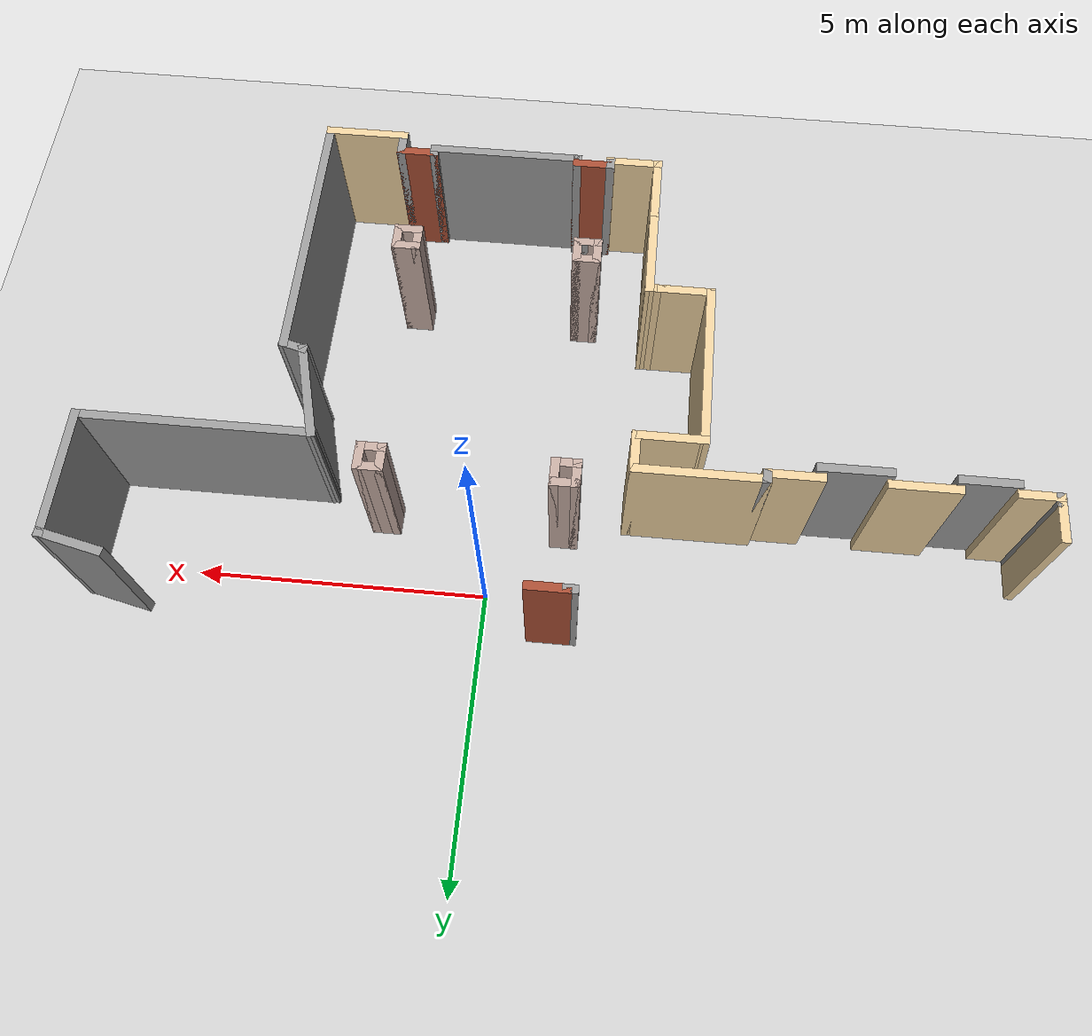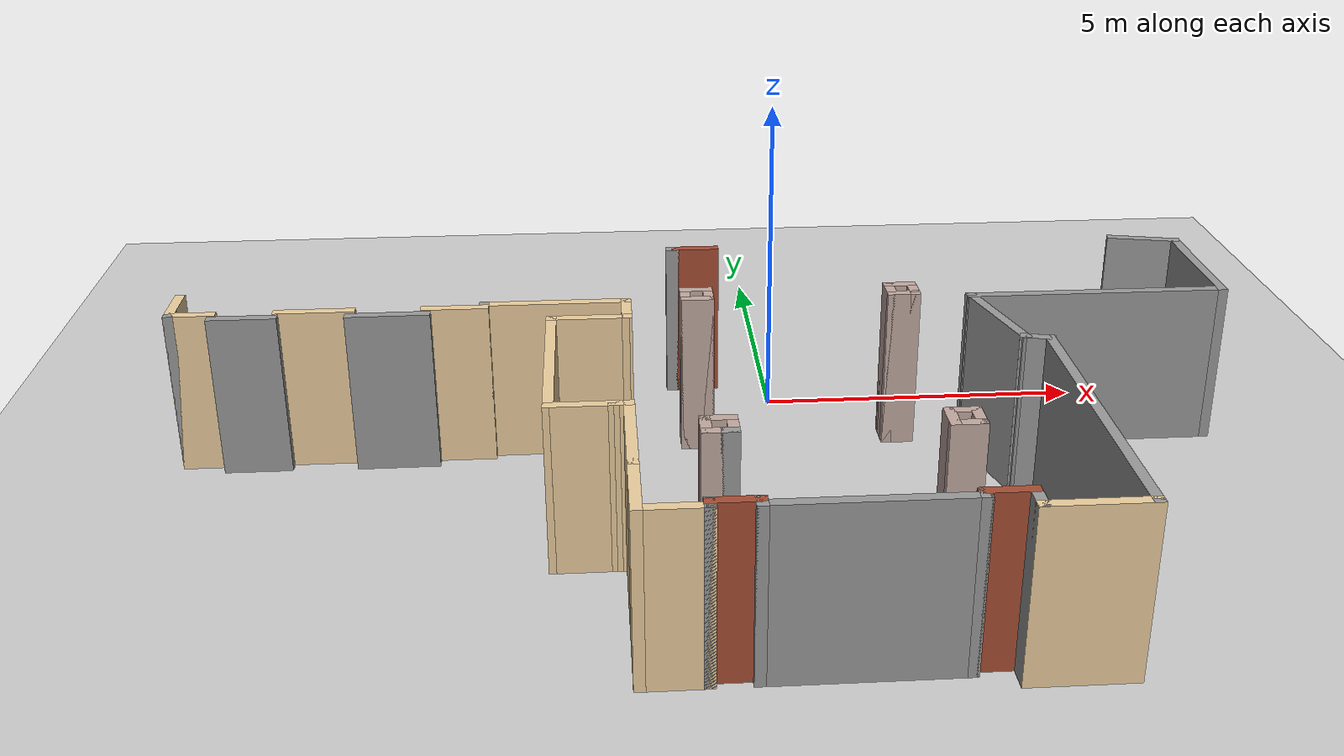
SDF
<sdf version="1.6">
 <world name="default">
  <model name="ground_plane">
   <static>1</static>
   <link name="link">
    <collision name="collision">
     <geometry><plane><normal>0 0 1</normal><size>100 100</size></plane></geometry>
     <surface>
      <contact><collide_bitmask>65535</collide_bitmask></contact>
      <friction><ode><mu>100</mu><mu2>50</mu2></ode></friction>
     </surface>
    </collision>
    <visual name="visual">
     <cast_shadows>0</cast_shadows>
     <geometry><plane><normal>0 0 1</normal><size>100 100</size></plane></geometry>
     <material>
      <script><uri>file://media/materials/scripts/gazebo.material</uri><name>Gazebo/Grey</name></script>
     </material>
    </visual>
   </link>
  </model>
  <model name="NSH_Hallway">
   <pose>-1.11426 2.16116 0 0 -0 0</pose>
   <link name="Wall_105">
    <collision name="Wall_105_Collision">
     <geometry><box><size>0.75 0.15 2.5</size></box></geometry>
     <pose>0 0 1.25 0 -0 0</pose>
    </collision>
    <visual name="Wall_105_Visual">
     <pose>0 0 1.25 0 -0 0</pose>
     <geometry><box><size>0.75 0.15 2.5</size></box></geometry>
     <material>
      <script><uri>file://media/materials/scripts/gazebo.material</uri><name>Gazebo/Grey</name></script>
      <ambient>0.921569 0.807843 0.615686 1</ambient>
     </material>
     <meta><layer>0</layer></meta>
    </visual>
    <pose>-7.88142 -3.32378 0 0 -0 -1.5708</pose>
   </link>
   <link name="Wall_106">
    <collision name="Wall_106_Collision">
     <geometry><box><size>0.25 0.15 2.5</size></box></geometry>
     <pose>0 0 1.25 0 -0 0</pose>
    </collision>
    <visual name="Wall_106_Visual">
     <pose>0 0 1.25 0 -0 0</pose>
     <geometry><box><size>0.25 0.15 2.5</size></box></geometry>
     <material>
      <script><uri>file://media/materials/scripts/gazebo.material</uri><name>Gazebo/Grey</name></script>
      <ambient>1 1 1 1</ambient>
     </material>
     <meta><layer>0</layer></meta>
    </visual>
    <pose>-7.88142 -3.67378 0 0 -0 -1.5708</pose>
   </link>
   <link name="Wall_107">
    <collision name="Wall_107_Collision">
     <geometry><box><size>0.75 0.15 2.5</size></box></geometry>
     <pose>0 0 1.25 0 -0 0</pose>
    </collision>
    <visual name="Wall_107_Visual">
     <pose>0 0 1.25 0 -0 0</pose>
     <geometry><box><size>0.75 0.15 2.5</size></box></geometry>
     <material>
      <script><uri>file://media/materials/scripts/gazebo.material</uri><name>Gazebo/Grey</name></script>
      <ambient>0.921569 0.807843 0.615686 1</ambient>
     </material>
     <meta><layer>0</layer></meta>
    </visual>
    <pose>-7.58142 -3.72378 0 0 -0 0</pose>
   </link>
   <link name="Wall_109">
    <collision name="Wall_109_Collision">
     <geometry><box><size>1.19955 0.15 2.5</size></box></geometry>
     <pose>0 0 1.25 0 -0 0</pose>
    </collision>
    <visual name="Wall_109_Visual">
     <pose>0 0 1.25 0 -0 0</pose>
     <geometry><box><size>1.19955 0.15 2.5</size></box></geometry>
     <material>
      <script><uri>file://media/materials/scripts/gazebo.material</uri><name>Gazebo/Grey</name></script>
      <ambient>0.921569 0.807843 0.615686 1</ambient>
     </material>
     <meta><layer>0</layer></meta>
    </visual>
    <pose>-5.78849 -3.71137 0 0 -0 0</pose>
   </link>
   <link name="Wall_172">
    <collision name="Wall_172_Collision">
     <geometry><box><size>1.25 0.15 2.5</size></box></geometry>
     <pose>0 0 1.25 0 -0 0</pose>
    </collision>
    <visual name="Wall_172_Visual">
     <pose>0 0 1.25 0 -0 0</pose>
     <geometry><box><size>1.25 0.15 2.5</size></box></geometry>
     <material>
      <script><uri>file://media/materials/scripts/gazebo.material</uri><name>Gazebo/Grey</name></script>
      <ambient>0.921569 0.807843 0.615686 1</ambient>
     </material>
     <meta><layer>0</layer></meta>
    </visual>
    <pose>-1.76247 -4.22776 0 0 -0 3.14144</pose>
   </link>
   <link name="Wall_173">
    <collision name="Wall_173_Collision">
     <geometry><box><size>3 0.15 2.5</size></box></geometry>
     <pose>0 0 1.25 0 -0 0</pose>
    </collision>
    <visual name="Wall_173_Visual">
     <pose>0 0 1.25 0 -0 0</pose>
     <geometry><box><size>3 0.15 2.5</size></box></geometry>
     <material>
      <script><uri>file://media/materials/scripts/gazebo.material</uri><name>Gazebo/Grey</name></script>
      <ambient>0.921569 0.807843 0.615686 1</ambient>
     </material>
     <meta><layer>0</layer></meta>
    </visual>
    <pose>-2.3125 -5.65268 0 0 -0 -1.5708</pose>
   </link>
   <link name="Wall_174">
    <collision name="Wall_174_Collision">
     <geometry><box><size>1 0.15 2.5</size></box></geometry>
     <pose>0 0 1.25 0 -0 0</pose>
    </collision>
    <visual name="Wall_174_Visual">
     <pose>0 0 1.25 0 -0 0</pose>
     <geometry><box><size>1 0.15 2.5</size></box></geometry>
     <material>
      <script><uri>file://media/materials/scripts/gazebo.material</uri><name>Gazebo/Grey</name></script>
      <ambient>0.921569 0.807843 0.615686 1</ambient>
     </material>
     <meta><layer>0</layer></meta>
    </visual>
    <pose>-1.88747 -7.07776 0 0 -0 -0.000198</pose>
   </link>
   <link name="Wall_175">
    <collision name="Wall_175_Collision">
     <geometry><box><size>0.349388 0.15 2.5</size></box></geometry>
     <pose>0 0 1.25 0 -0 0</pose>
    </collision>
    <visual name="Wall_175_Visual">
     <pose>0 0 1.25 0 -0 0</pose>
     <geometry><box><size>0.349388 0.15 2.5</size></box></geometry>
     <material>
      <script><uri>file://media/materials/scripts/gazebo.material</uri><name>Gazebo/Grey</name></script>
      <ambient>0.921569 0.807843 0.615686 1</ambient>
     </material>
     <meta><layer>0</layer></meta>
    </visual>
    <pose>-1.36276 -7.07686 0 0 -0 0.009857</pose>
   </link>
   <link name="Wall_176">
    <collision name="Wall_176_Collision">
     <geometry><box><size>1.75 0.15 2.5</size></box></geometry>
     <pose>0 0 1.25 0 -0 0</pose>
    </collision>
    <visual name="Wall_176_Visual">
     <pose>0 0 1.25 0 -0 0</pose>
     <geometry><box><size>1.75 0.15 2.5</size></box></geometry>
     <material>
      <script><uri>file://media/materials/scripts/gazebo.material</uri><name>Gazebo/Grey</name></script>
      <ambient>0.921569 0.807843 0.615686 1</ambient>
     </material>
     <meta><layer>0</layer></meta>
    </visual>
    <pose>-1.26307 -7.87588 0 0 -0 -1.5708</pose>
   </link>
   <link name="Wall_179">
    <collision name="Wall_179_Collision">
     <geometry><box><size>0.5 0.15 2.5</size></box></geometry>
     <pose>0 0 1.25 0 -0 0</pose>
    </collision>
    <visual name="Wall_179_Visual">
     <pose>0 0 1.25 0 -0 0</pose>
     <geometry><box><size>0.5 0.15 2.5</size></box></geometry>
     <material>
      <script><uri>file://media/materials/scripts/gazebo.material</uri><name>Gazebo/Grey</name></script>
      <ambient>0.760784 0.662745 0.627451 1</ambient>
     </material>
     <meta><layer>0</layer></meta>
    </visual>
    <pose>-0.146646 -7.58829 0 0 -0 0</pose>
   </link>
   <link name="Wall_180">
    <collision name="Wall_180_Collision">
     <geometry><box><size>0.5 0.15 2.5</size></box></geometry>
     <pose>0 0 1.25 0 -0 0</pose>
    </collision>
    <visual name="Wall_180_Visual">
     <pose>0 0 1.25 0 -0 0</pose>
     <geometry><box><size>0.5 0.15 2.5</size></box></geometry>
     <material>
      <script><uri>file://media/materials/scripts/gazebo.material</uri><name>Gazebo/Grey</name></script>
      <ambient>0.760784 0.662745 0.627451 1</ambient>
     </material>
     <meta><layer>0</layer></meta>
    </visual>
    <pose>0.028354 -7.76329 0 0 -0 -1.5708</pose>
   </link>
   <link name="Wall_181">
    <collision name="Wall_181_Collision">
     <geometry><box><size>0.25 0.15 2.5</size></box></geometry>
     <pose>0 0 1.25 0 -0 0</pose>
    </collision>
    <visual name="Wall_181_Visual">
     <pose>0 0 1.25 0 -0 0</pose>
     <geometry><box><size>0.25 0.15 2.5</size></box></geometry>
     <material>
      <script><uri>file://media/materials/scripts/gazebo.material</uri><name>Gazebo/Grey</name></script>
      <ambient>1 1 1 1</ambient>
     </material>
     <meta><layer>0</layer></meta>
    </visual>
    <pose>-0.021646 -7.9383 0 0 -0 3.14159</pose>
   </link>
   <link name="Wall_183">
    <collision name="Wall_183_Collision">
     <geometry><box><size>0.5 0.15 2.5</size></box></geometry>
     <pose>0 0 1.25 0 -0 0</pose>
    </collision>
    <visual name="Wall_183_Visual">
     <pose>0 0 1.25 0 -0 0</pose>
     <geometry><box><size>0.5 0.15 2.5</size></box></geometry>
     <material>
      <script><uri>file://media/materials/scripts/gazebo.material</uri><name>Gazebo/Grey</name></script>
      <ambient>0.760784 0.662745 0.627451 1</ambient>
     </material>
     <meta><layer>0</layer></meta>
    </visual>
    <pose>-0.321646 -7.76329 0 0 -0 -1.5708</pose>
   </link>
   <link name="Wall_184">
    <collision name="Wall_184_Collision">
     <geometry><box><size>0.5 0.15 2.5</size></box></geometry>
     <pose>0 0 1.25 0 -0 0</pose>
    </collision>
    <visual name="Wall_184_Visual">
     <pose>0 0 1.25 0 -0 0</pose>
     <geometry><box><size>0.5 0.15 2.5</size></box></geometry>
     <material>
      <script><uri>file://media/materials/scripts/gazebo.material</uri><name>Gazebo/Grey</name></script>
      <ambient>0.760784 0.662745 0.627451 1</ambient>
     </material>
     <meta><layer>0</layer></meta>
    </visual>
    <pose>-0.146646 -7.9383 0 0 -0 0</pose>
   </link>
   <link name="Wall_186">
    <collision name="Wall_186_Collision">
     <geometry><box><size>0.5 0.15 2.5</size></box></geometry>
     <pose>0 0 1.25 0 -0 0</pose>
    </collision>
    <visual name="Wall_186_Visual">
     <pose>0 0 1.25 0 -0 0</pose>
     <geometry><box><size>0.5 0.15 2.5</size></box></geometry>
     <material>
      <script><uri>file://media/materials/scripts/gazebo.material</uri><name>Gazebo/Grey</name></script>
      <ambient>0.760784 0.662745 0.627451 1</ambient>
     </material>
     <meta><layer>0</layer></meta>
    </visual>
    <pose>2.99841 -7.58829 0 0 -0 0</pose>
   </link>
   <link name="Wall_187">
    <collision name="Wall_187_Collision">
     <geometry><box><size>0.5 0.15 2.5</size></box></geometry>
     <pose>0 0 1.25 0 -0 0</pose>
    </collision>
    <visual name="Wall_187_Visual">
     <pose>0 0 1.25 0 -0 0</pose>
     <geometry><box><size>0.5 0.15 2.5</size></box></geometry>
     <material>
      <script><uri>file://media/materials/scripts/gazebo.material</uri><name>Gazebo/Grey</name></script>
      <ambient>0.760784 0.662745 0.627451 1</ambient>
     </material>
     <meta><layer>0</layer></meta>
    </visual>
    <pose>3.17341 -7.76329 0 0 -0 -1.5708</pose>
   </link>
   <link name="Wall_188">
    <collision name="Wall_188_Collision">
     <geometry><box><size>0.5 0.15 2.5</size></box></geometry>
     <pose>0 0 1.25 0 -0 0</pose>
    </collision>
    <visual name="Wall_188_Visual">
     <pose>0 0 1.25 0 -0 0</pose>
     <geometry><box><size>0.5 0.15 2.5</size></box></geometry>
     <material>
      <script><uri>file://media/materials/scripts/gazebo.material</uri><name>Gazebo/Grey</name></script>
      <ambient>0.760784 0.662745 0.627451 1</ambient>
     </material>
     <meta><layer>0</layer></meta>
    </visual>
    <pose>2.99841 -7.9383 0 0 -0 3.14159</pose>
   </link>
   <link name="Wall_189">
    <collision name="Wall_189_Collision">
     <geometry><box><size>0.5 0.15 2.5</size></box></geometry>
     <pose>0 0 1.25 0 -0 0</pose>
    </collision>
    <visual name="Wall_189_Visual">
     <pose>0 0 1.25 0 -0 0</pose>
     <geometry><box><size>0.5 0.15 2.5</size></box></geometry>
     <material>
      <script><uri>file://media/materials/scripts/gazebo.material</uri><name>Gazebo/Grey</name></script>
      <ambient>0.760784 0.662745 0.627451 1</ambient>
     </material>
     <meta><layer>0</layer></meta>
    </visual>
    <pose>2.82341 -7.76329 0 0 -0 1.5708</pose>
   </link>
   <link name="Wall_191">
    <collision name="Wall_191_Collision">
     <geometry><box><size>1.25 0.15 2.5</size></box></geometry>
     <pose>0 0 1.25 0 -0 0</pose>
    </collision>
    <visual name="Wall_191_Visual">
     <pose>0 0 1.25 0 -0 0</pose>
     <geometry><box><size>1.25 0.15 2.5</size></box></geometry>
     <material>
      <script><uri>file://media/materials/scripts/gazebo.material</uri><name>Gazebo/Grey</name></script>
      <ambient>0.921569 0.807843 0.615686 1</ambient>
     </material>
     <meta><layer>0</layer></meta>
    </visual>
    <pose>-1.26307 -9.22588 0 0 -0 -1.5708</pose>
   </link>
   <link name="Wall_192">
    <collision name="Wall_192_Collision">
     <geometry><box><size>1 0.15 2.5</size></box></geometry>
     <pose>0 0 1.25 0 -0 0</pose>
    </collision>
    <visual name="Wall_192_Visual">
     <pose>0 0 1.25 0 -0 0</pose>
     <geometry><box><size>1 0.15 2.5</size></box></geometry>
     <material>
      <script><uri>file://media/materials/scripts/gazebo.material</uri><name>Gazebo/Grey</name></script>
      <ambient>0.921569 0.807843 0.615686 1</ambient>
     </material>
     <meta><layer>0</layer></meta>
    </visual>
    <pose>-0.838069 -9.77588 0 0 -0 0</pose>
   </link>
   <link name="Wall_193">
    <collision name="Wall_193_Collision">
     <geometry><box><size>0.15 0.15 2.5</size></box></geometry>
     <pose>0 0 1.25 0 -0 0</pose>
    </collision>
    <visual name="Wall_193_Visual">
     <pose>0 0 1.25 0 -0 0</pose>
     <geometry><box><size>0.15 0.15 2.5</size></box></geometry>
     <material>
      <script><uri>file://media/materials/scripts/gazebo.material</uri><name>Gazebo/Grey</name></script>
      <ambient>1 1 1 1</ambient>
     </material>
     <meta><layer>0</layer></meta>
    </visual>
    <pose>-0.413069 -9.77588 0 0 -0 0</pose>
   </link>
   <link name="Wall_194">
    <collision name="Wall_194_Collision">
     <geometry><box><size>0.25 0.15 2.5</size></box></geometry>
     <pose>0 0 1.25 0 -0 0</pose>
    </collision>
    <visual name="Wall_194_Visual">
     <pose>0 0 1.25 0 -0 0</pose>
     <geometry><box><size>0.25 0.15 2.5</size></box></geometry>
     <material>
      <script><uri>file://media/materials/scripts/gazebo.material</uri><name>Gazebo/Grey</name></script>
      <ambient>1 1 1 1</ambient>
     </material>
     <meta><layer>0</layer></meta>
    </visual>
    <pose>-0.413069 -9.72588 0 0 -0 1.5708</pose>
   </link>
   <link name="Wall_195">
    <collision name="Wall_195_Collision">
     <geometry><box><size>0.75 0.15 2.5</size></box></geometry>
     <pose>0 0 1.25 0 -0 0</pose>
    </collision>
    <visual name="Wall_195_Visual">
     <pose>0 0 1.25 0 -0 0</pose>
     <geometry><box><size>0.75 0.15 2.5</size></box></geometry>
     <material>
      <script><uri>file://media/materials/scripts/gazebo.material</uri><name>Gazebo/Bricks</name></script>
      <ambient>1 1 1 1</ambient>
     </material>
     <meta><layer>0</layer></meta>
    </visual>
    <pose>-0.113069 -9.67588 0 0 -0 0</pose>
   </link>
   <link name="Wall_196">
    <collision name="Wall_196_Collision">
     <geometry><box><size>0.25 0.15 2.5</size></box></geometry>
     <pose>0 0 1.25 0 -0 0</pose>
    </collision>
    <visual name="Wall_196_Visual">
     <pose>0 0 1.25 0 -0 0</pose>
     <geometry><box><size>0.25 0.15 2.5</size></box></geometry>
     <material>
      <script><uri>file://media/materials/scripts/gazebo.material</uri><name>Gazebo/Grey</name></script>
      <ambient>1 1 1 1</ambient>
     </material>
     <meta><layer>0</layer></meta>
    </visual>
    <pose>0.186931 -9.72588 0 0 -0 -1.5708</pose>
   </link>
   <link name="Wall_197">
    <collision name="Wall_197_Collision">
     <geometry><box><size>2.75 0.15 2.5</size></box></geometry>
     <pose>0 0 1.25 0 -0 0</pose>
    </collision>
    <visual name="Wall_197_Visual">
     <pose>0 0 1.25 0 -0 0</pose>
     <geometry><box><size>2.75 0.15 2.5</size></box></geometry>
     <material>
      <script><uri>file://media/materials/scripts/gazebo.material</uri><name>Gazebo/Grey</name></script>
      <ambient>0.333333 0.341176 0.32549 1</ambient>
     </material>
     <meta><layer>0</layer></meta>
    </visual>
    <pose>1.48693 -9.77588 0 0 -0 0</pose>
   </link>
   <link name="Wall_198">
    <collision name="Wall_198_Collision">
     <geometry><box><size>0.25 0.15 2.5</size></box></geometry>
     <pose>0 0 1.25 0 -0 0</pose>
    </collision>
    <visual name="Wall_198_Visual">
     <pose>0 0 1.25 0 -0 0</pose>
     <geometry><box><size>0.25 0.15 2.5</size></box></geometry>
     <material>
      <script><uri>file://media/materials/scripts/gazebo.material</uri><name>Gazebo/Grey</name></script>
      <ambient>1 1 1 1</ambient>
     </material>
     <meta><layer>0</layer></meta>
    </visual>
    <pose>2.78693 -9.72588 0 0 -0 1.5708</pose>
   </link>
   <link name="Wall_199">
    <collision name="Wall_199_Collision">
     <geometry><box><size>0.75 0.15 2.5</size></box></geometry>
     <pose>0 0 1.25 0 -0 0</pose>
    </collision>
    <visual name="Wall_199_Visual">
     <pose>0 0 1.25 0 -0 0</pose>
     <geometry><box><size>0.75 0.15 2.5</size></box></geometry>
     <material>
      <script><uri>file://media/materials/scripts/gazebo.material</uri><name>Gazebo/Bricks</name></script>
      <ambient>1 1 1 1</ambient>
     </material>
     <meta><layer>0</layer></meta>
    </visual>
    <pose>3.08693 -9.67588 0 0 -0 0</pose>
   </link>
   <link name="Wall_200">
    <collision name="Wall_200_Collision">
     <geometry><box><size>0.5 0.15 2.5</size></box></geometry>
     <pose>0 0 1.25 0 -0 0</pose>
    </collision>
    <visual name="Wall_200_Visual">
     <pose>0 0 1.25 0 -0 0</pose>
     <geometry><box><size>0.5 0.15 2.5</size></box></geometry>
     <material>
      <script><uri>file://media/materials/scripts/gazebo.material</uri><name>Gazebo/Grey</name></script>
      <ambient>1 1 1 1</ambient>
     </material>
     <meta><layer>0</layer></meta>
    </visual>
    <pose>3.38693 -9.85088 0 0 -0 -1.5708</pose>
   </link>
   <link name="Wall_201">
    <collision name="Wall_201_Collision">
     <geometry><box><size>1.5 0.15 2.5</size></box></geometry>
     <pose>0 0 1.25 0 -0 0</pose>
    </collision>
    <visual name="Wall_201_Visual">
     <pose>0 0 1.25 0 -0 0</pose>
     <geometry><box><size>1.5 0.15 2.5</size></box></geometry>
     <material>
      <script><uri>file://media/materials/scripts/gazebo.material</uri><name>Gazebo/Grey</name></script>
      <ambient>0.921569 0.807843 0.615686 1</ambient>
     </material>
     <meta><layer>0</layer></meta>
    </visual>
    <pose>4.06193 -10.0259 0 0 -0 0</pose>
   </link>
   <link name="Wall_203">
    <collision name="Wall_203_Collision">
     <geometry><box><size>0.5 0.15 2.5</size></box></geometry>
     <pose>0 0 1.25 0 -0 0</pose>
    </collision>
    <visual name="Wall_203_Visual">
     <pose>0 0 1.25 0 -0 0</pose>
     <geometry><box><size>0.5 0.15 2.5</size></box></geometry>
     <material>
      <script><uri>file://media/materials/scripts/gazebo.material</uri><name>Gazebo/Grey</name></script>
      <ambient>0.760784 0.662745 0.627451 1</ambient>
     </material>
     <meta><layer>0</layer></meta>
    </visual>
    <pose>-0.14273 -3.2766 0 0 -0 0</pose>
   </link>
   <link name="Wall_204">
    <collision name="Wall_204_Collision">
     <geometry><box><size>0.5 0.15 2.5</size></box></geometry>
     <pose>0 0 1.25 0 -0 0</pose>
    </collision>
    <visual name="Wall_204_Visual">
     <pose>0 0 1.25 0 -0 0</pose>
     <geometry><box><size>0.5 0.15 2.5</size></box></geometry>
     <material>
      <script><uri>file://media/materials/scripts/gazebo.material</uri><name>Gazebo/Grey</name></script>
      <ambient>0.760784 0.662745 0.627451 1</ambient>
     </material>
     <meta><layer>0</layer></meta>
    </visual>
    <pose>0.03227 -3.4516 0 0 -0 -1.5708</pose>
   </link>
   <link name="Wall_205">
    <collision name="Wall_205_Collision">
     <geometry><box><size>0.5 0.15 2.5</size></box></geometry>
     <pose>0 0 1.25 0 -0 0</pose>
    </collision>
    <visual name="Wall_205_Visual">
     <pose>0 0 1.25 0 -0 0</pose>
     <geometry><box><size>0.5 0.15 2.5</size></box></geometry>
     <material>
      <script><uri>file://media/materials/scripts/gazebo.material</uri><name>Gazebo/Grey</name></script>
      <ambient>0.760784 0.662745 0.627451 1</ambient>
     </material>
     <meta><layer>0</layer></meta>
    </visual>
    <pose>-0.14273 -3.6266 0 0 -0 3.14159</pose>
   </link>
   <link name="Wall_206">
    <collision name="Wall_206_Collision">
     <geometry><box><size>0.5 0.15 2.5</size></box></geometry>
     <pose>0 0 1.25 0 -0 0</pose>
    </collision>
    <visual name="Wall_206_Visual">
     <pose>0 0 1.25 0 -0 0</pose>
     <geometry><box><size>0.5 0.15 2.5</size></box></geometry>
     <material>
      <script><uri>file://media/materials/scripts/gazebo.material</uri><name>Gazebo/Grey</name></script>
      <ambient>0.760784 0.662745 0.627451 1</ambient>
     </material>
     <meta><layer>0</layer></meta>
    </visual>
    <pose>-0.31773 -3.4516 0 0 -0 1.5708</pose>
   </link>
   <link name="Wall_213">
    <collision name="Wall_213_Collision">
     <geometry><box><size>1.01832 0.15 2.5</size></box></geometry>
     <pose>0 0 1.25 0 -0 0</pose>
    </collision>
    <visual name="Wall_213_Visual">
     <pose>0 0 1.25 0 -0 0</pose>
     <geometry><box><size>1.01832 0.15 2.5</size></box></geometry>
     <material>
      <script><uri>file://media/materials/scripts/gazebo.material</uri><name>Gazebo/Grey</name></script>
      <ambient>0.180392 0.203922 0.211765 1</ambient>
     </material>
     <meta><layer>0</layer></meta>
    </visual>
    <pose>-6.80225 -3.89503 0 0 -0 3.14159</pose>
   </link>
   <link name="Wall_217">
    <collision name="Wall_217_Collision">
     <geometry><box><size>1.24518 0.15 2.5</size></box></geometry>
     <pose>0 0 1.25 0 -0 0</pose>
    </collision>
    <visual name="Wall_217_Visual">
     <pose>0 0 1.25 0 -0 0</pose>
     <geometry><box><size>1.24518 0.15 2.5</size></box></geometry>
     <material>
      <script><uri>file://media/materials/scripts/gazebo.material</uri><name>Gazebo/Grey</name></script>
      <ambient>0.333333 0.341176 0.32549 1</ambient>
     </material>
     <meta><layer>0</layer></meta>
    </visual>
    <pose>-4.70184 -3.91458 0 0 -0 -3.13445</pose>
   </link>
   <link name="Wall_219">
    <collision name="Wall_219_Collision">
     <geometry><box><size>4.75 0.15 2.5</size></box></geometry>
     <pose>0 0 1.25 0 -0 0</pose>
    </collision>
    <visual name="Wall_219_Visual">
     <pose>0 0 1.25 0 -0 0</pose>
     <geometry><box><size>4.75 0.15 2.5</size></box></geometry>
     <material>
      <script><uri>file://media/materials/scripts/gazebo.material</uri><name>Gazebo/Grey</name></script>
      <ambient>0.180392 0.203922 0.211765 1</ambient>
     </material>
     <meta><layer>0</layer></meta>
    </visual>
    <pose>4.73693 -7.72588 0 0 -0 1.5708</pose>
   </link>
   <link name="Wall_220">
    <collision name="Wall_220_Collision">
     <geometry><box><size>0.5 0.15 2.5</size></box></geometry>
     <pose>0 0 1.25 0 -0 0</pose>
    </collision>
    <visual name="Wall_220_Visual">
     <pose>0 0 1.25 0 -0 0</pose>
     <geometry><box><size>0.5 0.15 2.5</size></box></geometry>
     <material>
      <script><uri>file://media/materials/scripts/gazebo.material</uri><name>Gazebo/Grey</name></script>
      <ambient>0.180392 0.203922 0.211765 1</ambient>
     </material>
     <meta><layer>0</layer></meta>
    </visual>
    <pose>4.56789 -5.38059 0 0 -0 2.87979</pose>
   </link>
   <link name="Wall_221">
    <collision name="Wall_221_Collision">
     <geometry><box><size>1.75 0.15 2.5</size></box></geometry>
     <pose>0 0 1.25 0 -0 0</pose>
    </collision>
    <visual name="Wall_221_Visual">
     <pose>0 0 1.25 0 -0 0</pose>
     <geometry><box><size>1.75 0.15 2.5</size></box></geometry>
     <material>
      <script><uri>file://media/materials/scripts/gazebo.material</uri><name>Gazebo/Grey</name></script>
      <ambient>0.180392 0.203922 0.211765 1</ambient>
     </material>
     <meta><layer>0</layer></meta>
    </visual>
    <pose>4.1918 -4.56255 0 0 -0 1.8326</pose>
   </link>
   <link name="Wall_222">
    <collision name="Wall_222_Collision">
     <geometry><box><size>4 0.15 2.5</size></box></geometry>
     <pose>0 0 1.25 0 -0 0</pose>
    </collision>
    <visual name="Wall_222_Visual">
     <pose>0 0 1.25 0 -0 0</pose>
     <geometry><box><size>4 0.15 2.5</size></box></geometry>
     <material>
      <script><uri>file://media/materials/scripts/gazebo.material</uri><name>Gazebo/Grey</name></script>
      <ambient>0.180392 0.203922 0.211765 1</ambient>
     </material>
     <meta><layer>0</layer></meta>
    </visual>
    <pose>5.90975 -3.78981 0 0 -0 0</pose>
   </link>
   <link name="Wall_223">
    <collision name="Wall_223_Collision">
     <geometry><box><size>2.25 0.15 2.5</size></box></geometry>
     <pose>0 0 1.25 0 -0 0</pose>
    </collision>
    <visual name="Wall_223_Visual">
     <pose>0 0 1.25 0 -0 0</pose>
     <geometry><box><size>2.25 0.15 2.5</size></box></geometry>
     <material>
      <script><uri>file://media/materials/scripts/gazebo.material</uri><name>Gazebo/Grey</name></script>
      <ambient>0.180392 0.203922 0.211765 1</ambient>
     </material>
     <meta><layer>0</layer></meta>
    </visual>
    <pose>7.83475 -2.73982 0 0 -0 1.5708</pose>
   </link>
   <link name="Wall_224">
    <collision name="Wall_224_Collision">
     <geometry><box><size>1.15422 0.15 2.5</size></box></geometry>
     <pose>0 0 1.25 0 -0 0</pose>
    </collision>
    <visual name="Wall_224_Visual">
     <pose>0 0 1.25 0 -0 0</pose>
     <geometry><box><size>1.15422 0.15 2.5</size></box></geometry>
     <material>
      <script><uri>file://media/materials/scripts/gazebo.material</uri><name>Gazebo/Grey</name></script>
      <ambient>0.180392 0.203922 0.211765 1</ambient>
     </material>
     <meta><layer>0</layer></meta>
    </visual>
    <pose>7.34462 -1.58075 0 0 -0 2.92263</pose>
   </link>
   <link name="Wall_61">
    <collision name="Wall_61_Collision">
     <geometry><box><size>0.75 0.15 2.5</size></box></geometry>
     <pose>0 0 1.25 0 -0 0</pose>
    </collision>
    <visual name="Wall_61_Visual">
     <pose>0 0 1.25 0 -0 0</pose>
     <geometry><box><size>0.75 0.15 2.5</size></box></geometry>
     <material>
      <script><uri>file://media/materials/scripts/gazebo.material</uri><name>Gazebo/Bricks</name></script>
      <ambient>1 1 1 1</ambient>
     </material>
     <meta><layer>0</layer></meta>
    </visual>
    <pose>-0.037499 -1.50968 0 0 -0 3.14159</pose>
   </link>
   <link name="Wall_62">
    <collision name="Wall_62_Collision">
     <geometry><box><size>0.25 0.15 2.5</size></box></geometry>
     <pose>0 0 1.25 0 -0 0</pose>
    </collision>
    <visual name="Wall_62_Visual">
     <pose>0 0 1.25 0 -0 0</pose>
     <geometry><box><size>0.25 0.15 2.5</size></box></geometry>
     <material>
      <script><uri>file://media/materials/scripts/gazebo.material</uri><name>Gazebo/Grey</name></script>
      <ambient>1 1 1 1</ambient>
     </material>
     <meta><layer>0</layer></meta>
    </visual>
    <pose>-0.387499 -1.50968 0 0 -0 3.14159</pose>
   </link>
   <link name="Wall_77">
    <collision name="Wall_77_Collision">
     <geometry><box><size>1 0.15 2.5</size></box></geometry>
     <pose>0 0 1.25 0 -0 0</pose>
    </collision>
    <visual name="Wall_77_Visual">
     <pose>0 0 1.25 0 -0 0</pose>
     <geometry><box><size>1 0.15 2.5</size></box></geometry>
     <material>
      <script><uri>file://media/materials/scripts/gazebo.material</uri><name>Gazebo/Grey</name></script>
      <ambient>0.921569 0.807843 0.615686 1</ambient>
     </material>
     <meta><layer>0</layer></meta>
    </visual>
    <pose>-3.73745 -3.72785 0 0 -0 0</pose>
   </link>
   <link name="Wall_78">
    <collision name="Wall_78_Collision">
     <geometry><box><size>0.25 0.15 2.5</size></box></geometry>
     <pose>0 0 1.25 0 -0 0</pose>
    </collision>
    <visual name="Wall_78_Visual">
     <pose>0 0 1.25 0 -0 0</pose>
     <geometry><box><size>0.25 0.15 2.5</size></box></geometry>
     <material>
      <script><uri>file://media/materials/scripts/gazebo.material</uri><name>Gazebo/Grey</name></script>
      <ambient>1 1 1 1</ambient>
     </material>
     <meta><layer>0</layer></meta>
    </visual>
    <pose>-3.31245 -3.67785 0 0 -0 1.5708</pose>
   </link>
   <link name="Wall_79">
    <collision name="Wall_79_Collision">
     <geometry><box><size>0.15 0.15 2.5</size></box></geometry>
     <pose>0 0 1.25 0 -0 0</pose>
    </collision>
    <visual name="Wall_79_Visual">
     <pose>0 0 1.25 0 -0 0</pose>
     <geometry><box><size>0.15 0.15 2.5</size></box></geometry>
     <material>
      <script><uri>file://media/materials/scripts/gazebo.material</uri><name>Gazebo/Grey</name></script>
      <ambient>1 1 1 1</ambient>
     </material>
     <meta><layer>0</layer></meta>
    </visual>
    <pose>-3.31245 -3.62785 0 0 -0 0</pose>
   </link>
   <link name="Wall_80">
    <collision name="Wall_80_Collision">
     <geometry><box><size>2.25 0.15 2.5</size></box></geometry>
     <pose>0 0 1.25 0 -0 0</pose>
    </collision>
    <visual name="Wall_80_Visual">
     <pose>0 0 1.25 0 -0 0</pose>
     <geometry><box><size>2.25 0.15 2.5</size></box></geometry>
     <material>
      <script><uri>file://media/materials/scripts/gazebo.material</uri><name>Gazebo/Grey</name></script>
      <ambient>0.921569 0.807843 0.615686 1</ambient>
     </material>
     <meta><layer>0</layer></meta>
    </visual>
    <pose>-2.26245 -3.62785 0 0 -0 0</pose>
   </link>
   <link name="Wall_81">
    <collision name="Wall_81_Collision">
     <geometry><box><size>0.75 0.15 2.5</size></box></geometry>
     <pose>0 0 1.25 0 -0 0</pose>
    </collision>
    <visual name="Wall_81_Visual">
     <pose>0 0 1.25 0 -0 0</pose>
     <geometry><box><size>0.75 0.15 2.5</size></box></geometry>
     <material>
      <script><uri>file://media/materials/scripts/gazebo.material</uri><name>Gazebo/Grey</name></script>
      <ambient>0.921569 0.807843 0.615686 1</ambient>
     </material>
     <meta><layer>0</layer></meta>
    </visual>
    <pose>-1.21245 -3.92785 0 0 -0 -1.5708</pose>
   </link>
   <link name="Wall_88">
    <collision name="Wall_88_Collision">
     <geometry><box><size>0.5 0.15 2.5</size></box></geometry>
     <pose>0 0 1.25 0 -0 0</pose>
    </collision>
    <visual name="Wall_88_Visual">
     <pose>0 0 1.25 0 -0 0</pose>
     <geometry><box><size>0.5 0.15 2.5</size></box></geometry>
     <material>
      <script><uri>file://media/materials/scripts/gazebo.material</uri><name>Gazebo/Grey</name></script>
      <ambient>0.760784 0.662745 0.627451 1</ambient>
     </material>
     <meta><layer>0</layer></meta>
    </visual>
    <pose>2.9805 -3.27868 0 0 -0 0</pose>
   </link>
   <link name="Wall_89">
    <collision name="Wall_89_Collision">
     <geometry><box><size>0.5 0.15 2.5</size></box></geometry>
     <pose>0 0 1.25 0 -0 0</pose>
    </collision>
    <visual name="Wall_89_Visual">
     <pose>0 0 1.25 0 -0 0</pose>
     <geometry><box><size>0.5 0.15 2.5</size></box></geometry>
     <material>
      <script><uri>file://media/materials/scripts/gazebo.material</uri><name>Gazebo/Grey</name></script>
      <ambient>0.760784 0.662745 0.627451 1</ambient>
     </material>
     <meta><layer>0</layer></meta>
    </visual>
    <pose>3.1555 -3.45368 0 0 -0 -1.5708</pose>
   </link>
   <link name="Wall_90">
    <collision name="Wall_90_Collision">
     <geometry><box><size>0.5 0.15 2.5</size></box></geometry>
     <pose>0 0 1.25 0 -0 0</pose>
    </collision>
    <visual name="Wall_90_Visual">
     <pose>0 0 1.25 0 -0 0</pose>
     <geometry><box><size>0.5 0.15 2.5</size></box></geometry>
     <material>
      <script><uri>file://media/materials/scripts/gazebo.material</uri><name>Gazebo/Grey</name></script>
      <ambient>0.760784 0.662745 0.627451 1</ambient>
     </material>
     <meta><layer>0</layer></meta>
    </visual>
    <pose>2.9805 -3.62868 0 0 -0 3.14159</pose>
   </link>
   <link name="Wall_91">
    <collision name="Wall_91_Collision">
     <geometry><box><size>0.5 0.15 2.5</size></box></geometry>
     <pose>0 0 1.25 0 -0 0</pose>
    </collision>
    <visual name="Wall_91_Visual">
     <pose>0 0 1.25 0 -0 0</pose>
     <geometry><box><size>0.5 0.15 2.5</size></box></geometry>
     <material>
      <script><uri>file://media/materials/scripts/gazebo.material</uri><name>Gazebo/Grey</name></script>
      <ambient>0.760784 0.662745 0.627451 1</ambient>
     </material>
     <meta><layer>0</layer></meta>
    </visual>
    <pose>2.8055 -3.45368 0 0 -0 1.5708</pose>
   </link>
   <static>1</static>
  </model>
 </world>
</sdf>
